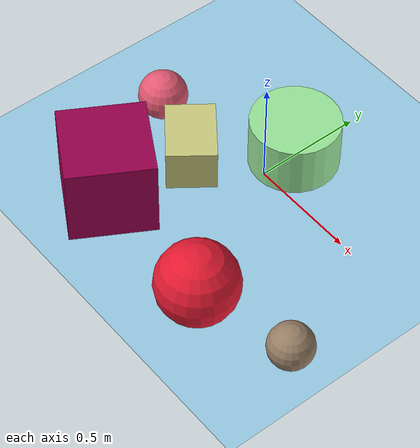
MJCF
<mujoco>
   <asset>
<texture type="skybox" builtin="gradient" rgb1="0.7 0.5 0.4" rgb2="0.3 0.5 0.5" width="500" height="500"/>
<texture name="checker_0" builtin="checker" rgb1="0.9 0.2 0.8" rgb2="0.9 0.5 0.1" width="500" height="500"/>
<texture name="flat_1" builtin="flat" rgb1="0.8 0.8 0.5" rgb2="0.8 0.8 0.5"  width="500" height="500"/>
<texture name="flat_2" builtin="flat" rgb1="0.6 0.9 0.6" rgb2="0.6 0.9 0.6"  width="500" height="500"/>
<texture name="flat_3" builtin="flat" rgb1="0.9 0.1 0.2" rgb2="0.9 0.1 0.2"  width="500" height="500"/>
<texture name="flat_4" builtin="flat" rgb1="0.6 0.0 0.3" rgb2="0.6 0.0 0.3"  width="500" height="500"/>
<texture name="flat_5" builtin="flat" rgb1="0.6 0.5 0.4" rgb2="0.6 0.5 0.4"  width="500" height="500"/><material name="checker_0_mat" reflectance="0.5793493501196367" texrepeat="10 10" texture="checker_0" texuniform="false" />
<material name="flat_1_mat" reflectance="0.093843399676654" texture="flat_1" texuniform="true"/>
<material name="flat_2_mat" reflectance="0.37087879540049173" texture="flat_2" texuniform="true"/>
<material name="flat_3_mat" reflectance="0.5272452305138965" texture="flat_3" texuniform="true"/>
<material name="flat_4_mat" reflectance="0.7897962489600314" texture="flat_4" texuniform="true"/>
<material name="flat_5_mat" reflectance="0.5373779037289692" texture="flat_5" texuniform="true"/>
   </asset>

   <worldbody>
     <geom type="plane" size="1 1 0.1" rgba="0.6 0.8 0.9 1" />
<light pos="-0.05373413116473302 -0.8802657234959617 2" dir="0 0 -1" cutoff="90" diffuse="1 1 1" specular="1 1 1"/>
<light pos="-0.3487908064752703 -0.6470792915401551 2" dir="0 0 -1" cutoff="90" diffuse="1 1 1" specular="1 1 1"/>
<geom type="sphere" pos="-0.56 -0.11 0.11" size="0.11 0.11 0.11" material="checker_0_mat" euler="0 0 79" />
<geom type="box" pos="-0.25 -0.2 0.1" size="0.11 0.15 0.1" material="flat_1_mat" euler="0 0 53" />
<geom type="cylinder" pos="0.01 0.16 0.12" size="0.2 0.12 0.12" material="flat_2_mat" euler="0 0 44" />
<geom type="sphere" pos="0.4 -0.68 0.18" size="0.18 0.18 0.18" material="flat_3_mat" euler="0 0 74" />
<geom type="box" pos="-0.29 -0.61 0.19" size="0.19 0.19 0.19" material="flat_4_mat" euler="0 0 60" />
<geom type="sphere" pos="0.82 -0.55 0.1" size="0.1 0.1 0.1" material="flat_5_mat" euler="0 0 87" /><camera euler="60 0 180" fovy="60" name="camera2" pos="0.2 -1.5 1"></camera>   </worldbody>
   <visual>
      <headlight diffuse="0.7 0.7 0.7"/>
   </visual>
</mujoco>
